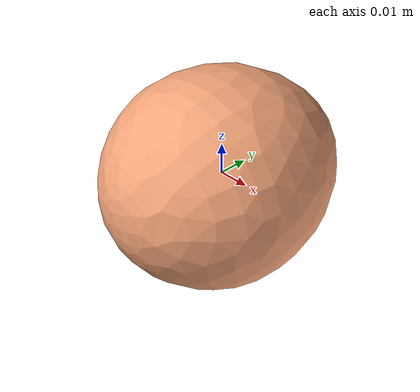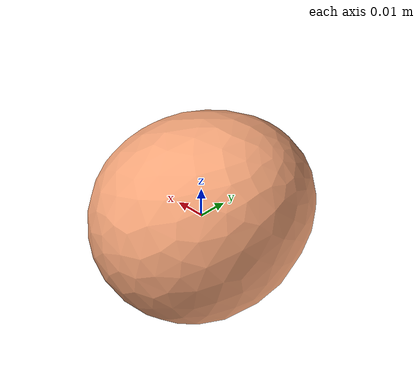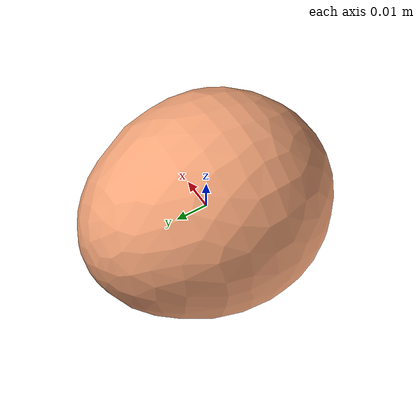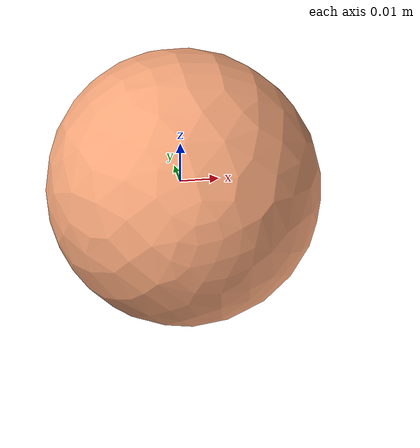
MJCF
<mujoco model="Egg_13">
  <compiler autolimits="true" boundmass="0.01" angle="radian"/>
  <default>
    <default class="/">
      <default class="__VISUAL_MJT__">
        <geom contype="0" conaffinity="0" group="0"/>
      </default>
      <default class="__STRUCTURAL_MJT__">
        <geom contype="8" conaffinity="15" group="4" friction="0.90000000000000002 0.90000000000000002 0.001" solref="0.025000000000000001 1" solimp="0.998 0.998 0.001"/>
      </default>
      <default class="__DYNAMIC_MJT__">
        <geom contype="1" conaffinity="15" group="4" friction="0.90000000000000002 0.90000000000000002 0.001" solref="0.025000000000000001 1" solimp="0.998 0.998 0.001"/>
      </default>
    </default>
  </default>
  <asset>
    <material name="material_Egg1_Mat" class="/" specular="0.5" shininess="0.5" rgba="0.96078439999999998 0.64705880000000005 0.47450979999999998 1"/>
    <mesh name="Egg_13_egg_13" class="/" file="Egg_13_egg_13/Egg_13_egg_13.obj" scale="1 1 1"/>
  </asset>
  <worldbody>
    <body name="Egg_13">
      <joint name="Egg_13_free" class="/" type="free" pos="0 0 0" axis="0 0 1" stiffness="0" range="0 0" armature="0" damping="0.10000000000000001" frictionloss="0"/>
      <body name="Egg_13_egg_13" pos="-0 0 0" quat="1 0 0 0">
        <geom name="Egg_13_egg_13" class="__VISUAL_MJT__" type="mesh" material="material_Egg1_Mat" shellinertia="true" mesh="Egg_13_egg_13"/>
        <geom name="Egg_13_PrimitiveCollider_0" class="__DYNAMIC_MJT__" type="capsule" size="0.031165780499577522 0.0085837002843618393" rgba="0 1 0 1" pos="-0 0 0" quat="0.70710678118654757 0.70710678118654746 0 0"/>
      </body>
    </body>
  </worldbody>
</mujoco>
